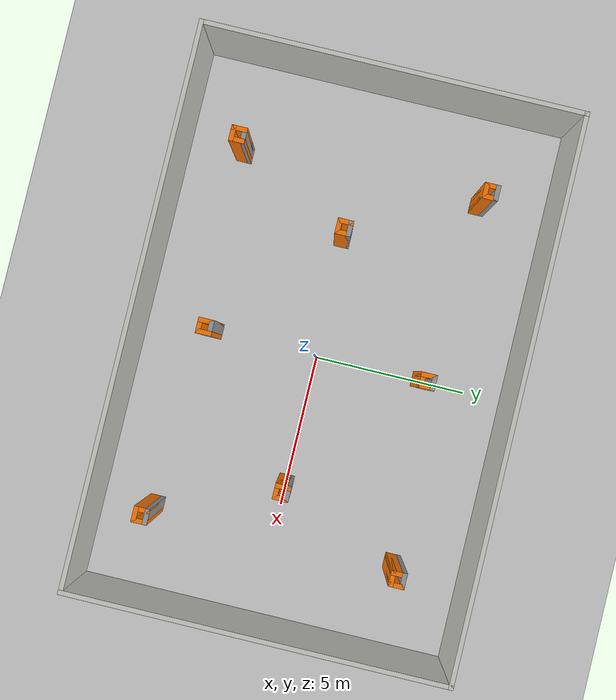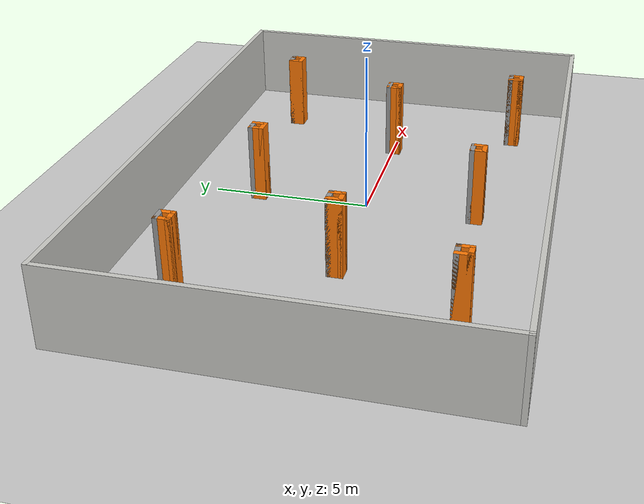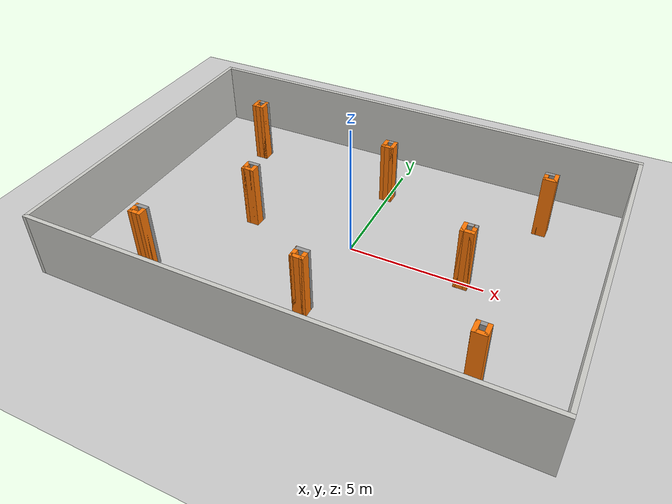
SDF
<sdf version="1.7">
 <world name="default">
  <light name="sun" type="directional">
   <pose>0 0 10 0 -0 0</pose>
   <diffuse>0.8 0.8 0.8 1</diffuse>
   <specular>0.2 0.2 0.2 1</specular>
   <attenuation>
    <range>1000</range>
    <constant>0.9</constant>
    <linear>0.01</linear>
    <quadratic>0.001</quadratic>
   </attenuation>
   <direction>-0.5 0.1 -0.9</direction>
   <spot><inner_angle>0</inner_angle><outer_angle>0</outer_angle><falloff>0</falloff></spot>
  </light>
  <model name="ground_plane">
   <static>1</static>
   <link name="link">
    <collision name="collision">
     <geometry><plane><normal>0 0 1</normal><size>100 100</size></plane></geometry>
     <surface><friction><ode><mu>100</mu><mu2>50</mu2></ode></friction></surface>
    </collision>
    <visual name="visual">
     <cast_shadows>0</cast_shadows>
     <geometry><plane><normal>0 0 1</normal><size>100 100</size></plane></geometry>
     <material>
      <script><uri>file://media/materials/scripts/gazebo.material</uri><name>Gazebo/Grey</name></script>
     </material>
    </visual>
   </link>
  </model>
  <gravity>0 0 -9.8</gravity>
  <magnetic_field>6e-06 2.3e-05 -4.2e-05</magnetic_field>
  <atmosphere type="adiabatic"/>
  <physics type="ode">
   <max_step_size>0.001</max_step_size>
   <real_time_factor>1</real_time_factor>
   <real_time_update_rate>1000</real_time_update_rate>
  </physics>
  <scene><ambient>0.4 0.4 0.4 1</ambient><background>0.7 0.7 0.7 1</background><shadows>1</shadows></scene>
  <spherical_coordinates>
   <surface_model>EARTH_WGS84</surface_model>
   <latitude_deg>0</latitude_deg>
   <longitude_deg>0</longitude_deg>
   <elevation>0</elevation>
   <heading_deg>0</heading_deg>
  </spherical_coordinates>
  <model name="my_world">
   <pose>-0.201575 0.254484 0 0 -0 0</pose>
   <link name="Wall_22">
    <collision name="Wall_22_Collision">
     <geometry><box><size>18 0.15 2.5</size></box></geometry>
     <pose>0 0 1.25 0 -0 0</pose>
    </collision>
    <visual name="Wall_22_Visual">
     <pose>0 0 1.25 0 -0 0</pose>
     <geometry><box><size>18 0.15 2.5</size></box></geometry>
     <material>
      <script><uri>file://media/materials/scripts/gazebo.material</uri><name>Gazebo/CeilingTiled</name></script>
      <ambient>1 1 1 1</ambient>
     </material>
     <meta><layer>0</layer></meta>
    </visual>
    <pose>0 6.05 0 0 -0 0</pose>
   </link>
   <link name="Wall_25">
    <collision name="Wall_25_Collision">
     <geometry><box><size>12.25 0.15 2.5</size></box></geometry>
     <pose>0 0 1.25 0 -0 0</pose>
    </collision>
    <visual name="Wall_25_Visual">
     <pose>0 0 1.25 0 -0 0</pose>
     <geometry><box><size>12.25 0.15 2.5</size></box></geometry>
     <material>
      <script><uri>file://media/materials/scripts/gazebo.material</uri><name>Gazebo/CeilingTiled</name></script>
      <ambient>1 1 1 1</ambient>
     </material>
     <meta><layer>0</layer></meta>
    </visual>
    <pose>8.925 -0 0 0 -0 -1.5708</pose>
   </link>
   <link name="Wall_26">
    <collision name="Wall_26_Collision">
     <geometry><box><size>18 0.15 2.5</size></box></geometry>
     <pose>0 0 1.25 0 -0 0</pose>
    </collision>
    <visual name="Wall_26_Visual">
     <pose>0 0 1.25 0 -0 0</pose>
     <geometry><box><size>18 0.15 2.5</size></box></geometry>
     <material>
      <script><uri>file://media/materials/scripts/gazebo.material</uri><name>Gazebo/CeilingTiled</name></script>
      <ambient>1 1 1 1</ambient>
     </material>
     <meta><layer>0</layer></meta>
    </visual>
    <pose>0 -6.05 0 0 -0 3.14159</pose>
   </link>
   <link name="Wall_27">
    <collision name="Wall_27_Collision">
     <geometry><box><size>12.25 0.15 2.5</size></box></geometry>
     <pose>0 0 1.25 0 -0 0</pose>
    </collision>
    <visual name="Wall_27_Visual">
     <pose>0 0 1.25 0 -0 0</pose>
     <geometry><box><size>12.25 0.15 2.5</size></box></geometry>
     <material>
      <script><uri>file://media/materials/scripts/gazebo.material</uri><name>Gazebo/CeilingTiled</name></script>
      <ambient>1 1 1 1</ambient>
     </material>
     <meta><layer>0</layer></meta>
    </visual>
    <pose>-8.925 -0 0 0 -0 1.5708</pose>
   </link>
   <static>1</static>
  </model>
  <model name="Untitled">
   <pose>-5.22632 5.22729 0 0 -0 0</pose>
   <link name="Wall_0">
    <collision name="Wall_0_Collision">
     <geometry><box><size>0.5 0.15 2.5</size></box></geometry>
     <pose>0 0 1.25 0 -0 0</pose>
    </collision>
    <visual name="Wall_0_Visual">
     <pose>0 0 1.25 0 -0 0</pose>
     <geometry><box><size>0.5 0.15 2.5</size></box></geometry>
     <material>
      <script><uri>file://media/materials/scripts/gazebo.material</uri><name>Gazebo/Grey</name></script>
      <ambient>0.996078 0.47451 0.0196078 1</ambient>
     </material>
     <meta><layer>0</layer></meta>
    </visual>
    <pose>-1.0675 -1.2025 0 0 -0 -1.5708</pose>
   </link>
   <link name="Wall_1">
    <collision name="Wall_1_Collision">
     <geometry><box><size>0.5 0.15 2.5</size></box></geometry>
     <pose>0 0 1.25 0 -0 0</pose>
    </collision>
    <visual name="Wall_1_Visual">
     <pose>0 0 1.25 0 -0 0</pose>
     <geometry><box><size>0.5 0.15 2.5</size></box></geometry>
     <material>
      <script><uri>file://media/materials/scripts/gazebo.material</uri><name>Gazebo/Grey</name></script>
      <ambient>0.996078 0.47451 0.0196078 1</ambient>
     </material>
     <meta><layer>0</layer></meta>
    </visual>
    <pose>-0.8925 -1.3775 0 0 -0 0</pose>
   </link>
   <link name="Wall_2">
    <collision name="Wall_2_Collision">
     <geometry><box><size>0.5 0.15 2.5</size></box></geometry>
     <pose>0 0 1.25 0 -0 0</pose>
    </collision>
    <visual name="Wall_2_Visual">
     <pose>0 0 1.25 0 -0 0</pose>
     <geometry><box><size>0.5 0.15 2.5</size></box></geometry>
     <material>
      <script><uri>file://media/materials/scripts/gazebo.material</uri><name>Gazebo/Grey</name></script>
      <ambient>0.996078 0.47451 0.0196078 1</ambient>
     </material>
     <meta><layer>0</layer></meta>
    </visual>
    <pose>-0.7175 -1.2025 0 0 -0 1.5708</pose>
   </link>
   <link name="Wall_3">
    <collision name="Wall_3_Collision">
     <geometry><box><size>0.5 0.15 2.5</size></box></geometry>
     <pose>0 0 1.25 0 -0 0</pose>
    </collision>
    <visual name="Wall_3_Visual">
     <pose>0 0 1.25 0 -0 0</pose>
     <geometry><box><size>0.5 0.15 2.5</size></box></geometry>
     <material>
      <script><uri>file://media/materials/scripts/gazebo.material</uri><name>Gazebo/Grey</name></script>
      <ambient>1 1 1 1</ambient>
     </material>
     <meta><layer>0</layer></meta>
    </visual>
    <pose>-0.8925 -1.0275 0 0 -0 3.14159</pose>
   </link>
   <static>1</static>
  </model>
  <model name="Untitled_clone">
   <pose>-5.1264 -2.68228 0 0 -0 0</pose>
   <link name="Wall_0">
    <collision name="Wall_0_Collision">
     <geometry><box><size>0.5 0.15 2.5</size></box></geometry>
     <pose>0 0 1.25 0 -0 0</pose>
    </collision>
    <visual name="Wall_0_Visual">
     <pose>0 0 1.25 0 -0 0</pose>
     <geometry><box><size>0.5 0.15 2.5</size></box></geometry>
     <material>
      <script><uri>file://media/materials/scripts/gazebo.material</uri><name>Gazebo/Grey</name></script>
      <ambient>0.996078 0.47451 0.0196078 1</ambient>
     </material>
     <meta><layer>0</layer></meta>
    </visual>
    <pose>-1.0675 -1.2025 0 0 -0 -1.5708</pose>
   </link>
   <link name="Wall_1">
    <collision name="Wall_1_Collision">
     <geometry><box><size>0.5 0.15 2.5</size></box></geometry>
     <pose>0 0 1.25 0 -0 0</pose>
    </collision>
    <visual name="Wall_1_Visual">
     <pose>0 0 1.25 0 -0 0</pose>
     <geometry><box><size>0.5 0.15 2.5</size></box></geometry>
     <material>
      <script><uri>file://media/materials/scripts/gazebo.material</uri><name>Gazebo/Grey</name></script>
      <ambient>0.996078 0.47451 0.0196078 1</ambient>
     </material>
     <meta><layer>0</layer></meta>
    </visual>
    <pose>-0.8925 -1.3775 0 0 -0 0</pose>
   </link>
   <link name="Wall_2">
    <collision name="Wall_2_Collision">
     <geometry><box><size>0.5 0.15 2.5</size></box></geometry>
     <pose>0 0 1.25 0 -0 0</pose>
    </collision>
    <visual name="Wall_2_Visual">
     <pose>0 0 1.25 0 -0 0</pose>
     <geometry><box><size>0.5 0.15 2.5</size></box></geometry>
     <material>
      <script><uri>file://media/materials/scripts/gazebo.material</uri><name>Gazebo/Grey</name></script>
      <ambient>0.996078 0.47451 0.0196078 1</ambient>
     </material>
     <meta><layer>0</layer></meta>
    </visual>
    <pose>-0.7175 -1.2025 0 0 -0 1.5708</pose>
   </link>
   <link name="Wall_3">
    <collision name="Wall_3_Collision">
     <geometry><box><size>0.5 0.15 2.5</size></box></geometry>
     <pose>0 0 1.25 0 -0 0</pose>
    </collision>
    <visual name="Wall_3_Visual">
     <pose>0 0 1.25 0 -0 0</pose>
     <geometry><box><size>0.5 0.15 2.5</size></box></geometry>
     <material>
      <script><uri>file://media/materials/scripts/gazebo.material</uri><name>Gazebo/Grey</name></script>
      <ambient>1 1 1 1</ambient>
     </material>
     <meta><layer>0</layer></meta>
    </visual>
    <pose>-0.8925 -1.0275 0 0 -0 3.14159</pose>
   </link>
   <static>1</static>
  </model>
  <model name="Untitled_clone_0">
   <pose>-3.12321 1.1318 0 0 -0 0</pose>
   <link name="Wall_0">
    <collision name="Wall_0_Collision">
     <geometry><box><size>0.5 0.15 2.5</size></box></geometry>
     <pose>0 0 1.25 0 -0 0</pose>
    </collision>
    <visual name="Wall_0_Visual">
     <pose>0 0 1.25 0 -0 0</pose>
     <geometry><box><size>0.5 0.15 2.5</size></box></geometry>
     <material>
      <script><uri>file://media/materials/scripts/gazebo.material</uri><name>Gazebo/Grey</name></script>
      <ambient>0.996078 0.47451 0.0196078 1</ambient>
     </material>
     <meta><layer>0</layer></meta>
    </visual>
    <pose>-1.0675 -1.2025 0 0 -0 -1.5708</pose>
   </link>
   <link name="Wall_1">
    <collision name="Wall_1_Collision">
     <geometry><box><size>0.5 0.15 2.5</size></box></geometry>
     <pose>0 0 1.25 0 -0 0</pose>
    </collision>
    <visual name="Wall_1_Visual">
     <pose>0 0 1.25 0 -0 0</pose>
     <geometry><box><size>0.5 0.15 2.5</size></box></geometry>
     <material>
      <script><uri>file://media/materials/scripts/gazebo.material</uri><name>Gazebo/Grey</name></script>
      <ambient>0.996078 0.47451 0.0196078 1</ambient>
     </material>
     <meta><layer>0</layer></meta>
    </visual>
    <pose>-0.8925 -1.3775 0 0 -0 0</pose>
   </link>
   <link name="Wall_2">
    <collision name="Wall_2_Collision">
     <geometry><box><size>0.5 0.15 2.5</size></box></geometry>
     <pose>0 0 1.25 0 -0 0</pose>
    </collision>
    <visual name="Wall_2_Visual">
     <pose>0 0 1.25 0 -0 0</pose>
     <geometry><box><size>0.5 0.15 2.5</size></box></geometry>
     <material>
      <script><uri>file://media/materials/scripts/gazebo.material</uri><name>Gazebo/Grey</name></script>
      <ambient>0.996078 0.47451 0.0196078 1</ambient>
     </material>
     <meta><layer>0</layer></meta>
    </visual>
    <pose>-0.7175 -1.2025 0 0 -0 1.5708</pose>
   </link>
   <link name="Wall_3">
    <collision name="Wall_3_Collision">
     <geometry><box><size>0.5 0.15 2.5</size></box></geometry>
     <pose>0 0 1.25 0 -0 0</pose>
    </collision>
    <visual name="Wall_3_Visual">
     <pose>0 0 1.25 0 -0 0</pose>
     <geometry><box><size>0.5 0.15 2.5</size></box></geometry>
     <material>
      <script><uri>file://media/materials/scripts/gazebo.material</uri><name>Gazebo/Grey</name></script>
      <ambient>1 1 1 1</ambient>
     </material>
     <meta><layer>0</layer></meta>
    </visual>
    <pose>-0.8925 -1.0275 0 0 -0 3.14159</pose>
   </link>
   <static>1</static>
  </model>
  <model name="Untitled_clone_1">
   <pose>0.832706 4.6943 0 0 -0 0</pose>
   <link name="Wall_0">
    <collision name="Wall_0_Collision">
     <geometry><box><size>0.5 0.15 2.5</size></box></geometry>
     <pose>0 0 1.25 0 -0 0</pose>
    </collision>
    <visual name="Wall_0_Visual">
     <pose>0 0 1.25 0 -0 0</pose>
     <geometry><box><size>0.5 0.15 2.5</size></box></geometry>
     <material>
      <script><uri>file://media/materials/scripts/gazebo.material</uri><name>Gazebo/Grey</name></script>
      <ambient>0.996078 0.47451 0.0196078 1</ambient>
     </material>
     <meta><layer>0</layer></meta>
    </visual>
    <pose>-1.0675 -1.2025 0 0 -0 -1.5708</pose>
   </link>
   <link name="Wall_1">
    <collision name="Wall_1_Collision">
     <geometry><box><size>0.5 0.15 2.5</size></box></geometry>
     <pose>0 0 1.25 0 -0 0</pose>
    </collision>
    <visual name="Wall_1_Visual">
     <pose>0 0 1.25 0 -0 0</pose>
     <geometry><box><size>0.5 0.15 2.5</size></box></geometry>
     <material>
      <script><uri>file://media/materials/scripts/gazebo.material</uri><name>Gazebo/Grey</name></script>
      <ambient>0.996078 0.47451 0.0196078 1</ambient>
     </material>
     <meta><layer>0</layer></meta>
    </visual>
    <pose>-0.8925 -1.3775 0 0 -0 0</pose>
   </link>
   <link name="Wall_2">
    <collision name="Wall_2_Collision">
     <geometry><box><size>0.5 0.15 2.5</size></box></geometry>
     <pose>0 0 1.25 0 -0 0</pose>
    </collision>
    <visual name="Wall_2_Visual">
     <pose>0 0 1.25 0 -0 0</pose>
     <geometry><box><size>0.5 0.15 2.5</size></box></geometry>
     <material>
      <script><uri>file://media/materials/scripts/gazebo.material</uri><name>Gazebo/Grey</name></script>
      <ambient>0.996078 0.47451 0.0196078 1</ambient>
     </material>
     <meta><layer>0</layer></meta>
    </visual>
    <pose>-0.7175 -1.2025 0 0 -0 1.5708</pose>
   </link>
   <link name="Wall_3">
    <collision name="Wall_3_Collision">
     <geometry><box><size>0.5 0.15 2.5</size></box></geometry>
     <pose>0 0 1.25 0 -0 0</pose>
    </collision>
    <visual name="Wall_3_Visual">
     <pose>0 0 1.25 0 -0 0</pose>
     <geometry><box><size>0.5 0.15 2.5</size></box></geometry>
     <material>
      <script><uri>file://media/materials/scripts/gazebo.material</uri><name>Gazebo/Grey</name></script>
      <ambient>1 1 1 1</ambient>
     </material>
     <meta><layer>0</layer></meta>
    </visual>
    <pose>-0.8925 -1.0275 0 0 -0 3.14159</pose>
   </link>
   <static>1</static>
  </model>
  <model name="Untitled_clone_2">
   <pose>0.807256 -2.26617 0 0 -0 0</pose>
   <link name="Wall_0">
    <collision name="Wall_0_Collision">
     <geometry><box><size>0.5 0.15 2.5</size></box></geometry>
     <pose>0 0 1.25 0 -0 0</pose>
    </collision>
    <visual name="Wall_0_Visual">
     <pose>0 0 1.25 0 -0 0</pose>
     <geometry><box><size>0.5 0.15 2.5</size></box></geometry>
     <material>
      <script><uri>file://media/materials/scripts/gazebo.material</uri><name>Gazebo/Grey</name></script>
      <ambient>0.996078 0.47451 0.0196078 1</ambient>
     </material>
     <meta><layer>0</layer></meta>
    </visual>
    <pose>-1.0675 -1.2025 0 0 -0 -1.5708</pose>
   </link>
   <link name="Wall_1">
    <collision name="Wall_1_Collision">
     <geometry><box><size>0.5 0.15 2.5</size></box></geometry>
     <pose>0 0 1.25 0 -0 0</pose>
    </collision>
    <visual name="Wall_1_Visual">
     <pose>0 0 1.25 0 -0 0</pose>
     <geometry><box><size>0.5 0.15 2.5</size></box></geometry>
     <material>
      <script><uri>file://media/materials/scripts/gazebo.material</uri><name>Gazebo/Grey</name></script>
      <ambient>0.996078 0.47451 0.0196078 1</ambient>
     </material>
     <meta><layer>0</layer></meta>
    </visual>
    <pose>-0.8925 -1.3775 0 0 -0 0</pose>
   </link>
   <link name="Wall_2">
    <collision name="Wall_2_Collision">
     <geometry><box><size>0.5 0.15 2.5</size></box></geometry>
     <pose>0 0 1.25 0 -0 0</pose>
    </collision>
    <visual name="Wall_2_Visual">
     <pose>0 0 1.25 0 -0 0</pose>
     <geometry><box><size>0.5 0.15 2.5</size></box></geometry>
     <material>
      <script><uri>file://media/materials/scripts/gazebo.material</uri><name>Gazebo/Grey</name></script>
      <ambient>0.996078 0.47451 0.0196078 1</ambient>
     </material>
     <meta><layer>0</layer></meta>
    </visual>
    <pose>-0.7175 -1.2025 0 0 -0 1.5708</pose>
   </link>
   <link name="Wall_3">
    <collision name="Wall_3_Collision">
     <geometry><box><size>0.5 0.15 2.5</size></box></geometry>
     <pose>0 0 1.25 0 -0 0</pose>
    </collision>
    <visual name="Wall_3_Visual">
     <pose>0 0 1.25 0 -0 0</pose>
     <geometry><box><size>0.5 0.15 2.5</size></box></geometry>
     <material>
      <script><uri>file://media/materials/scripts/gazebo.material</uri><name>Gazebo/Grey</name></script>
      <ambient>1 1 1 1</ambient>
     </material>
     <meta><layer>0</layer></meta>
    </visual>
    <pose>-0.8925 -1.0275 0 0 -0 3.14159</pose>
   </link>
   <static>1</static>
  </model>
  <model name="Untitled_clone_3">
   <pose>5.13708 1.18677 0 0 -0 0</pose>
   <link name="Wall_0">
    <collision name="Wall_0_Collision">
     <geometry><box><size>0.5 0.15 2.5</size></box></geometry>
     <pose>0 0 1.25 0 -0 0</pose>
    </collision>
    <visual name="Wall_0_Visual">
     <pose>0 0 1.25 0 -0 0</pose>
     <geometry><box><size>0.5 0.15 2.5</size></box></geometry>
     <material>
      <script><uri>file://media/materials/scripts/gazebo.material</uri><name>Gazebo/Grey</name></script>
      <ambient>0.996078 0.47451 0.0196078 1</ambient>
     </material>
     <meta><layer>0</layer></meta>
    </visual>
    <pose>-1.0675 -1.2025 0 0 -0 -1.5708</pose>
   </link>
   <link name="Wall_1">
    <collision name="Wall_1_Collision">
     <geometry><box><size>0.5 0.15 2.5</size></box></geometry>
     <pose>0 0 1.25 0 -0 0</pose>
    </collision>
    <visual name="Wall_1_Visual">
     <pose>0 0 1.25 0 -0 0</pose>
     <geometry><box><size>0.5 0.15 2.5</size></box></geometry>
     <material>
      <script><uri>file://media/materials/scripts/gazebo.material</uri><name>Gazebo/Grey</name></script>
      <ambient>0.996078 0.47451 0.0196078 1</ambient>
     </material>
     <meta><layer>0</layer></meta>
    </visual>
    <pose>-0.8925 -1.3775 0 0 -0 0</pose>
   </link>
   <link name="Wall_2">
    <collision name="Wall_2_Collision">
     <geometry><box><size>0.5 0.15 2.5</size></box></geometry>
     <pose>0 0 1.25 0 -0 0</pose>
    </collision>
    <visual name="Wall_2_Visual">
     <pose>0 0 1.25 0 -0 0</pose>
     <geometry><box><size>0.5 0.15 2.5</size></box></geometry>
     <material>
      <script><uri>file://media/materials/scripts/gazebo.material</uri><name>Gazebo/Grey</name></script>
      <ambient>0.996078 0.47451 0.0196078 1</ambient>
     </material>
     <meta><layer>0</layer></meta>
    </visual>
    <pose>-0.7175 -1.2025 0 0 -0 1.5708</pose>
   </link>
   <link name="Wall_3">
    <collision name="Wall_3_Collision">
     <geometry><box><size>0.5 0.15 2.5</size></box></geometry>
     <pose>0 0 1.25 0 -0 0</pose>
    </collision>
    <visual name="Wall_3_Visual">
     <pose>0 0 1.25 0 -0 0</pose>
     <geometry><box><size>0.5 0.15 2.5</size></box></geometry>
     <material>
      <script><uri>file://media/materials/scripts/gazebo.material</uri><name>Gazebo/Grey</name></script>
      <ambient>1 1 1 1</ambient>
     </material>
     <meta><layer>0</layer></meta>
    </visual>
    <pose>-0.8925 -1.0275 0 0 -0 3.14159</pose>
   </link>
   <static>1</static>
  </model>
  <model name="Untitled_clone_4">
   <pose>6.86066 5.20046 0 0 -0 0</pose>
   <link name="Wall_0">
    <collision name="Wall_0_Collision">
     <geometry><box><size>0.5 0.15 2.5</size></box></geometry>
     <pose>0 0 1.25 0 -0 0</pose>
    </collision>
    <visual name="Wall_0_Visual">
     <pose>0 0 1.25 0 -0 0</pose>
     <geometry><box><size>0.5 0.15 2.5</size></box></geometry>
     <material>
      <script><uri>file://media/materials/scripts/gazebo.material</uri><name>Gazebo/Grey</name></script>
      <ambient>0.996078 0.47451 0.0196078 1</ambient>
     </material>
     <meta><layer>0</layer></meta>
    </visual>
    <pose>-1.0675 -1.2025 0 0 -0 -1.5708</pose>
   </link>
   <link name="Wall_1">
    <collision name="Wall_1_Collision">
     <geometry><box><size>0.5 0.15 2.5</size></box></geometry>
     <pose>0 0 1.25 0 -0 0</pose>
    </collision>
    <visual name="Wall_1_Visual">
     <pose>0 0 1.25 0 -0 0</pose>
     <geometry><box><size>0.5 0.15 2.5</size></box></geometry>
     <material>
      <script><uri>file://media/materials/scripts/gazebo.material</uri><name>Gazebo/Grey</name></script>
      <ambient>0.996078 0.47451 0.0196078 1</ambient>
     </material>
     <meta><layer>0</layer></meta>
    </visual>
    <pose>-0.8925 -1.3775 0 0 -0 0</pose>
   </link>
   <link name="Wall_2">
    <collision name="Wall_2_Collision">
     <geometry><box><size>0.5 0.15 2.5</size></box></geometry>
     <pose>0 0 1.25 0 -0 0</pose>
    </collision>
    <visual name="Wall_2_Visual">
     <pose>0 0 1.25 0 -0 0</pose>
     <geometry><box><size>0.5 0.15 2.5</size></box></geometry>
     <material>
      <script><uri>file://media/materials/scripts/gazebo.material</uri><name>Gazebo/Grey</name></script>
      <ambient>0.996078 0.47451 0.0196078 1</ambient>
     </material>
     <meta><layer>0</layer></meta>
    </visual>
    <pose>-0.7175 -1.2025 0 0 -0 1.5708</pose>
   </link>
   <link name="Wall_3">
    <collision name="Wall_3_Collision">
     <geometry><box><size>0.5 0.15 2.5</size></box></geometry>
     <pose>0 0 1.25 0 -0 0</pose>
    </collision>
    <visual name="Wall_3_Visual">
     <pose>0 0 1.25 0 -0 0</pose>
     <geometry><box><size>0.5 0.15 2.5</size></box></geometry>
     <material>
      <script><uri>file://media/materials/scripts/gazebo.material</uri><name>Gazebo/Grey</name></script>
      <ambient>1 1 1 1</ambient>
     </material>
     <meta><layer>0</layer></meta>
    </visual>
    <pose>-0.8925 -1.0275 0 0 -0 3.14159</pose>
   </link>
   <static>1</static>
  </model>
  <model name="Untitled_clone_5">
   <pose>6.80749 -2.79793 0 0 -0 0</pose>
   <link name="Wall_0">
    <collision name="Wall_0_Collision">
     <geometry><box><size>0.5 0.15 2.5</size></box></geometry>
     <pose>0 0 1.25 0 -0 0</pose>
    </collision>
    <visual name="Wall_0_Visual">
     <pose>0 0 1.25 0 -0 0</pose>
     <geometry><box><size>0.5 0.15 2.5</size></box></geometry>
     <material>
      <script><uri>file://media/materials/scripts/gazebo.material</uri><name>Gazebo/Grey</name></script>
      <ambient>0.996078 0.47451 0.0196078 1</ambient>
     </material>
     <meta><layer>0</layer></meta>
    </visual>
    <pose>-1.0675 -1.2025 0 0 -0 -1.5708</pose>
   </link>
   <link name="Wall_1">
    <collision name="Wall_1_Collision">
     <geometry><box><size>0.5 0.15 2.5</size></box></geometry>
     <pose>0 0 1.25 0 -0 0</pose>
    </collision>
    <visual name="Wall_1_Visual">
     <pose>0 0 1.25 0 -0 0</pose>
     <geometry><box><size>0.5 0.15 2.5</size></box></geometry>
     <material>
      <script><uri>file://media/materials/scripts/gazebo.material</uri><name>Gazebo/Grey</name></script>
      <ambient>0.996078 0.47451 0.0196078 1</ambient>
     </material>
     <meta><layer>0</layer></meta>
    </visual>
    <pose>-0.8925 -1.3775 0 0 -0 0</pose>
   </link>
   <link name="Wall_2">
    <collision name="Wall_2_Collision">
     <geometry><box><size>0.5 0.15 2.5</size></box></geometry>
     <pose>0 0 1.25 0 -0 0</pose>
    </collision>
    <visual name="Wall_2_Visual">
     <pose>0 0 1.25 0 -0 0</pose>
     <geometry><box><size>0.5 0.15 2.5</size></box></geometry>
     <material>
      <script><uri>file://media/materials/scripts/gazebo.material</uri><name>Gazebo/Grey</name></script>
      <ambient>0.996078 0.47451 0.0196078 1</ambient>
     </material>
     <meta><layer>0</layer></meta>
    </visual>
    <pose>-0.7175 -1.2025 0 0 -0 1.5708</pose>
   </link>
   <link name="Wall_3">
    <collision name="Wall_3_Collision">
     <geometry><box><size>0.5 0.15 2.5</size></box></geometry>
     <pose>0 0 1.25 0 -0 0</pose>
    </collision>
    <visual name="Wall_3_Visual">
     <pose>0 0 1.25 0 -0 0</pose>
     <geometry><box><size>0.5 0.15 2.5</size></box></geometry>
     <material>
      <script><uri>file://media/materials/scripts/gazebo.material</uri><name>Gazebo/Grey</name></script>
      <ambient>1 1 1 1</ambient>
     </material>
     <meta><layer>0</layer></meta>
    </visual>
    <pose>-0.8925 -1.0275 0 0 -0 3.14159</pose>
   </link>
   <static>1</static>
  </model>
 </world>
</sdf>
